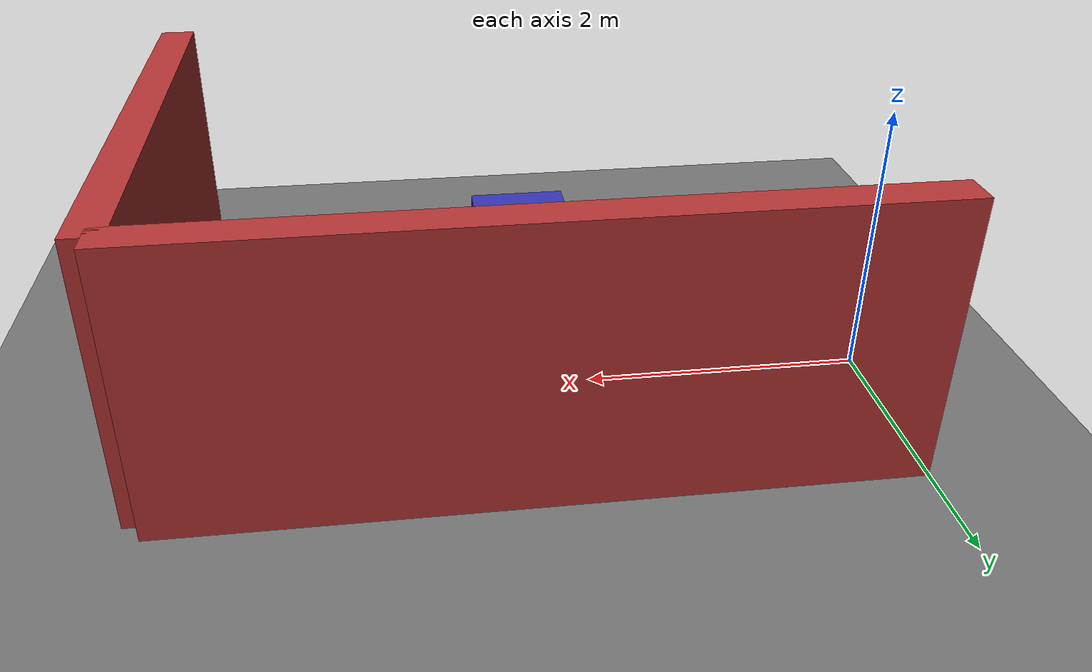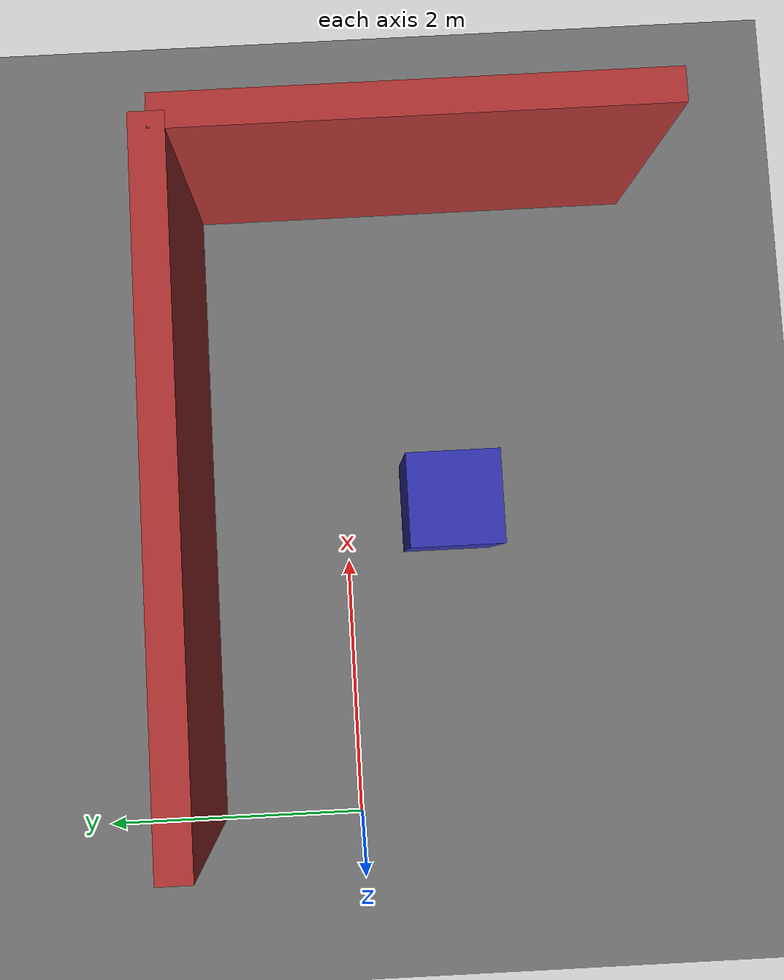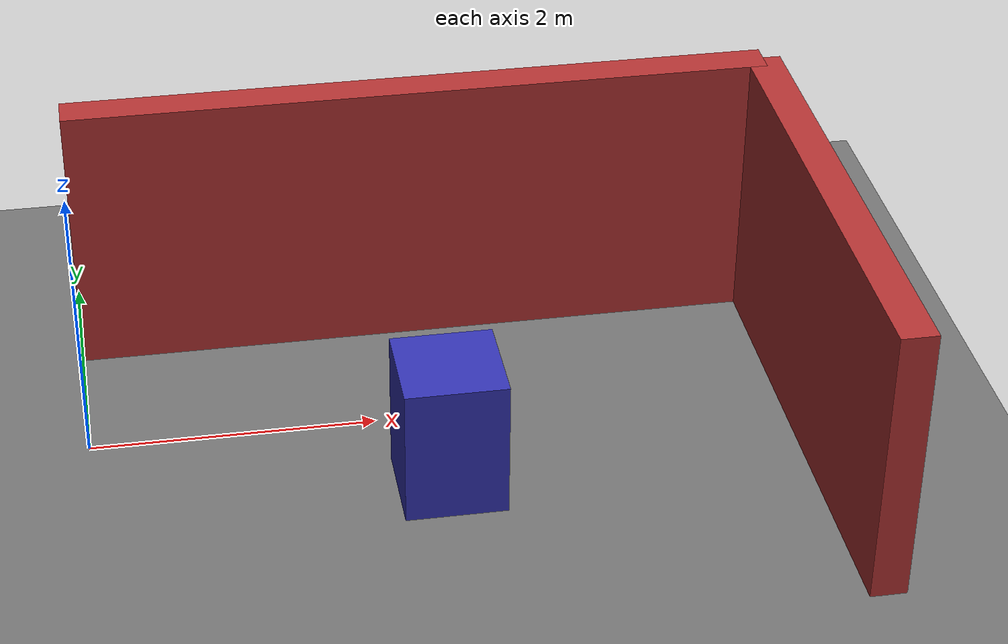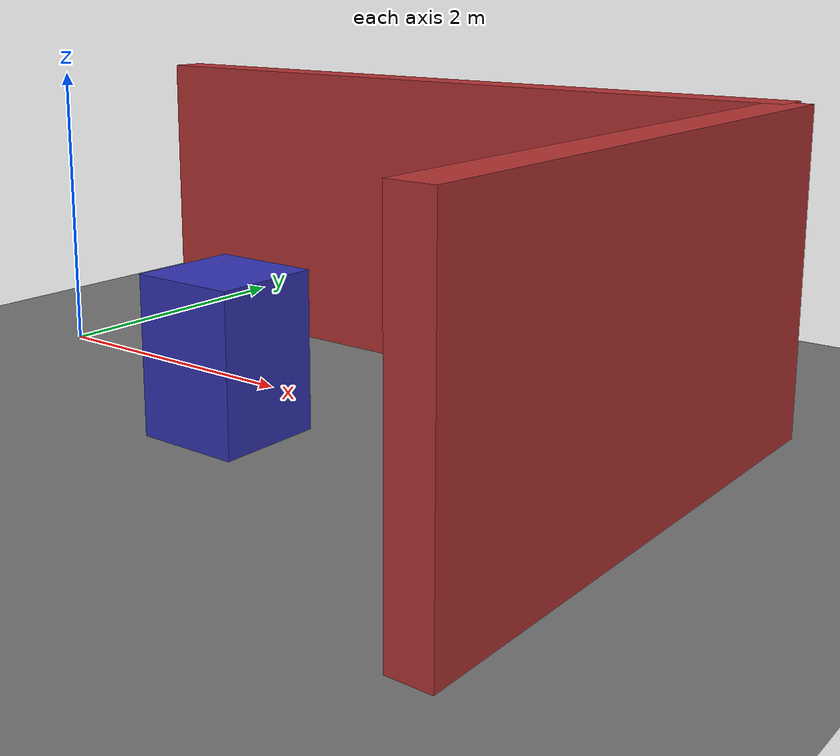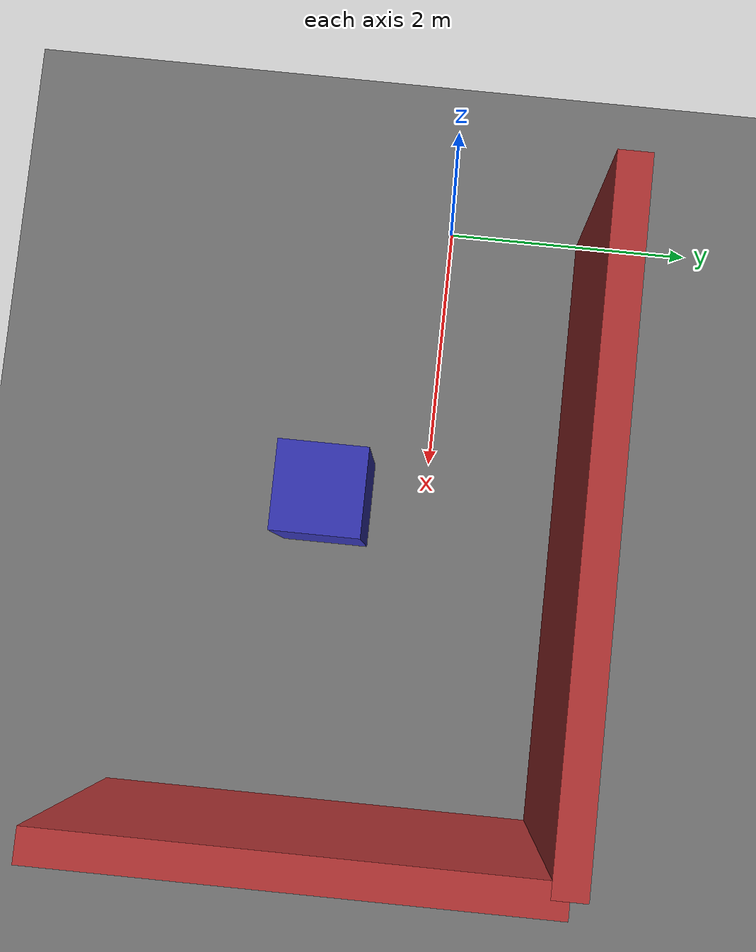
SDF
<?xml version="1.0"?>
<sdf version="1.6">
  <world name="pmocha_corner_occlusion">
    <plugin name="gazebo_ros_init" filename="libgazebo_ros_init.so"/>
    <plugin name="gazebo_ros_factory" filename="libgazebo_ros_factory.so"/>

    <light name="sun" type="directional">
      <cast_shadows>true</cast_shadows>
      <pose>0 0 10 0 0 0</pose>
      <diffuse>0.8 0.8 0.8 1</diffuse>
      <specular>0.2 0.2 0.2 1</specular>
      <attenuation>
        <range>1000</range>
        <constant>0.9</constant>
        <linear>0.01</linear>
        <quadratic>0.001</quadratic>
      </attenuation>
      <direction>-0.5 0.1 -0.9</direction>
    </light>

    <model name="ground_plane">
      <static>true</static>
      <link name="link">
        <collision name="collision">
          <geometry>
            <plane>
              <normal>0 0 1</normal>
              <size>30 20</size>
            </plane>
          </geometry>
        </collision>
        <visual name="visual">
          <geometry>
            <plane>
              <normal>0 0 1</normal>
              <size>30 20</size>
            </plane>
          </geometry>
          <material>
            <ambient>0.45 0.45 0.45 1</ambient>
            <diffuse>0.45 0.45 0.45 1</diffuse>
          </material>
        </visual>
      </link>
    </model>

    <model name="wall_long">
      <static>true</static>
      <pose>2.5 1.2 1.0 0 0 0</pose>
      <link name="link">
        <collision name="collision">
          <geometry>
            <box>
              <size>5.0 0.25 2.0</size>
            </box>
          </geometry>
        </collision>
        <visual name="visual">
          <geometry>
            <box>
              <size>5.0 0.25 2.0</size>
            </box>
          </geometry>
          <material>
            <ambient>0.7 0.2 0.2 1</ambient>
            <diffuse>0.7 0.2 0.2 1</diffuse>
          </material>
        </visual>
      </link>
    </model>

    <model name="wall_corner">
      <static>true</static>
      <pose>5.0 -0.6 1.0 0 0 0</pose>
      <link name="link">
        <collision name="collision">
          <geometry>
            <box>
              <size>0.25 3.6 2.0</size>
            </box>
          </geometry>
        </collision>
        <visual name="visual">
          <geometry>
            <box>
              <size>0.25 3.6 2.0</size>
            </box>
          </geometry>
          <material>
            <ambient>0.7 0.2 0.2 1</ambient>
            <diffuse>0.7 0.2 0.2 1</diffuse>
          </material>
        </visual>
      </link>
    </model>

    <model name="box_obstacle">
      <static>true</static>
      <pose>2.4 -0.8 0.5 0 0 0</pose>
      <link name="link">
        <collision name="collision">
          <geometry>
            <box>
              <size>0.7 0.7 1.0</size>
            </box>
          </geometry>
        </collision>
        <visual name="visual">
          <geometry>
            <box>
              <size>0.7 0.7 1.0</size>
            </box>
          </geometry>
          <material>
            <ambient>0.2 0.2 0.7 1</ambient>
            <diffuse>0.2 0.2 0.7 1</diffuse>
          </material>
        </visual>
      </link>
    </model>

    <physics type="ode">
      <max_step_size>0.01</max_step_size>
      <real_time_factor>1.0</real_time_factor>
      <real_time_update_rate>100</real_time_update_rate>
    </physics>

    <gui fullscreen="0">
      <camera name="user_camera">
        <pose>-3.0 0.0 1.8 0 0.32 0</pose>
        <view_controller>orbit</view_controller>
        <projection_type>perspective</projection_type>
      </camera>
    </gui>
  </world>
</sdf>
